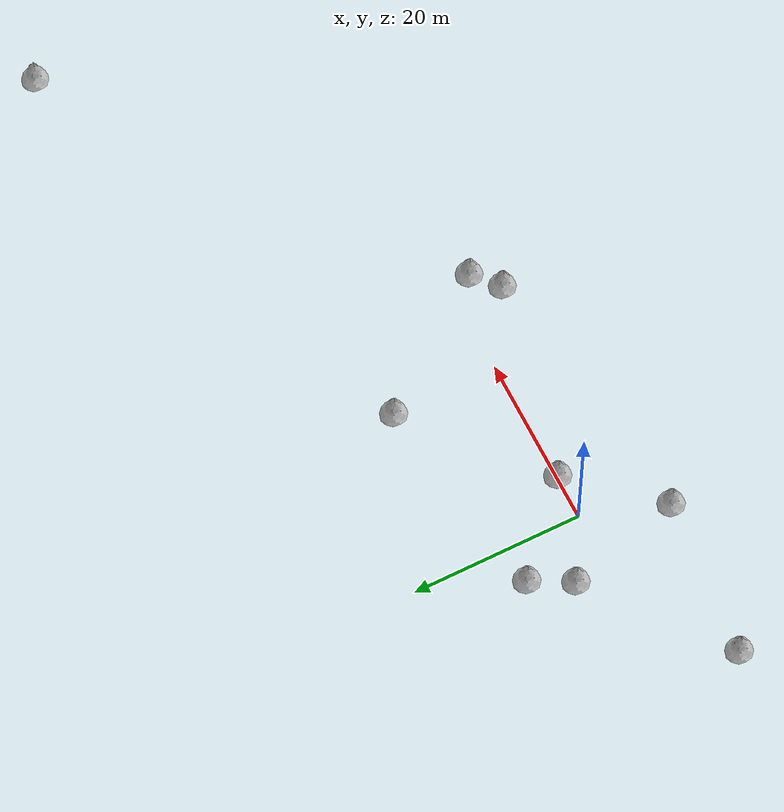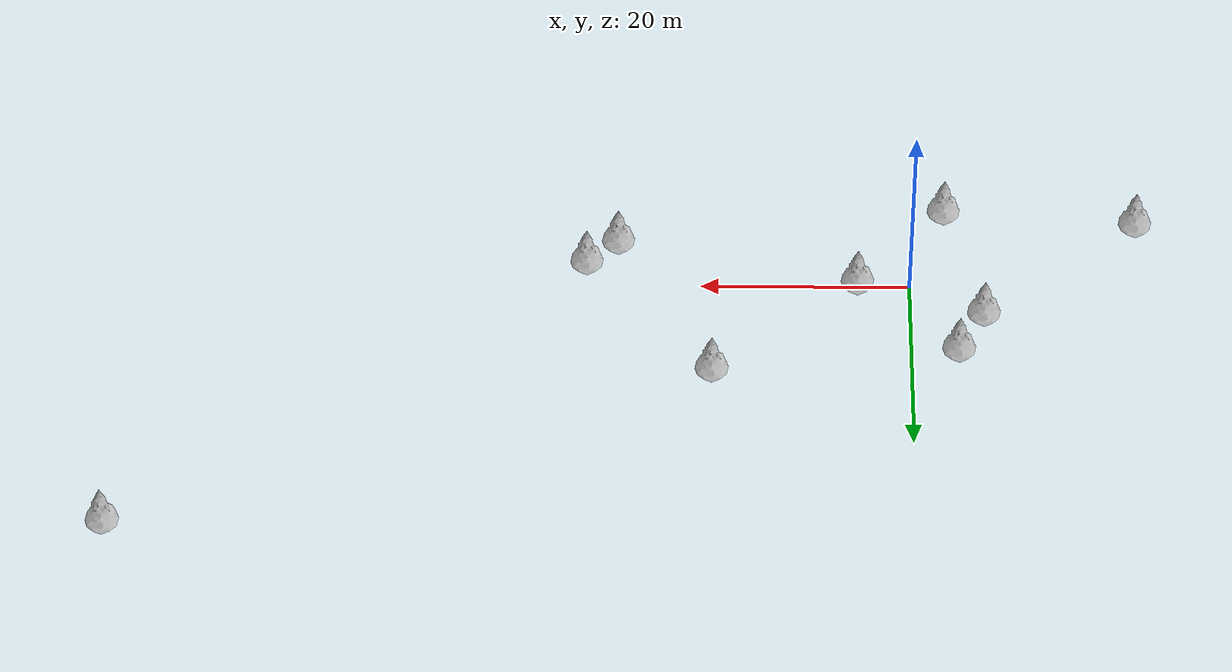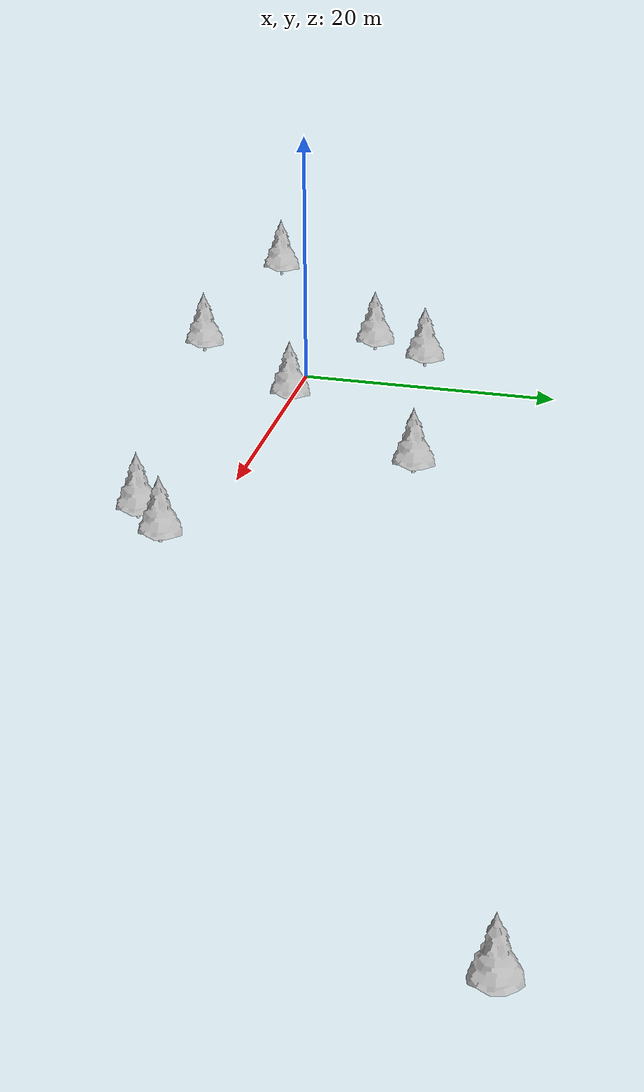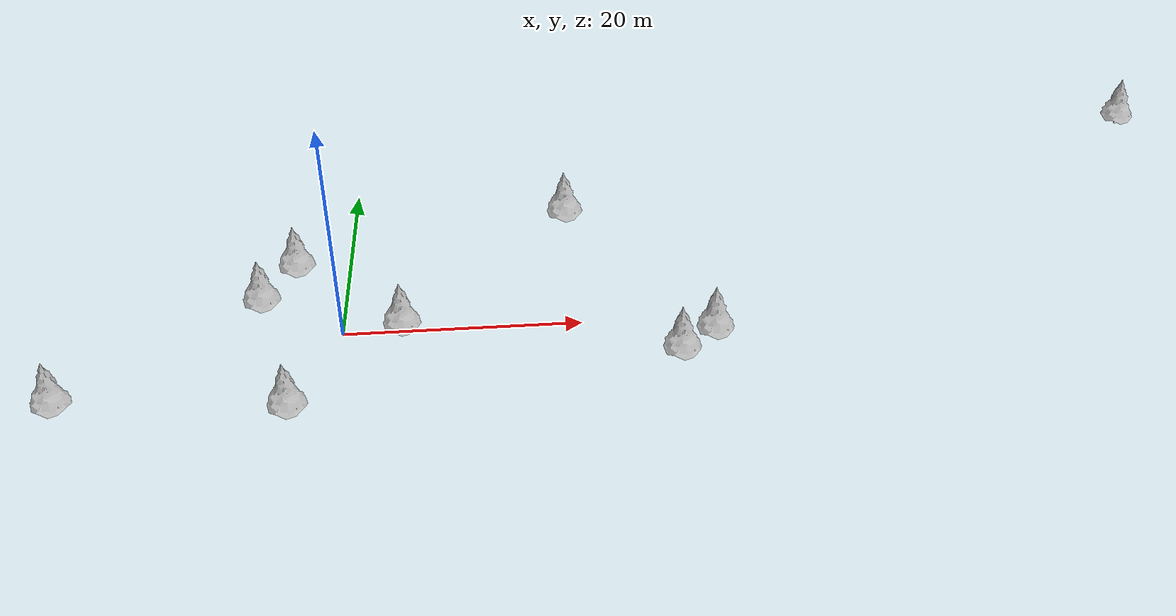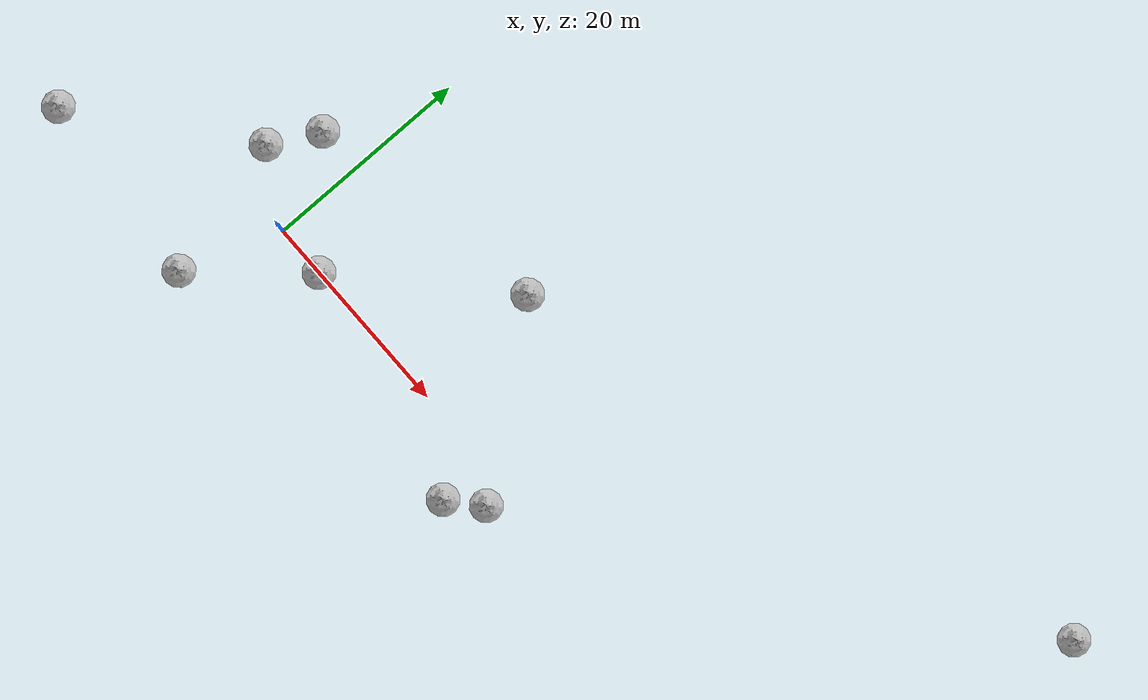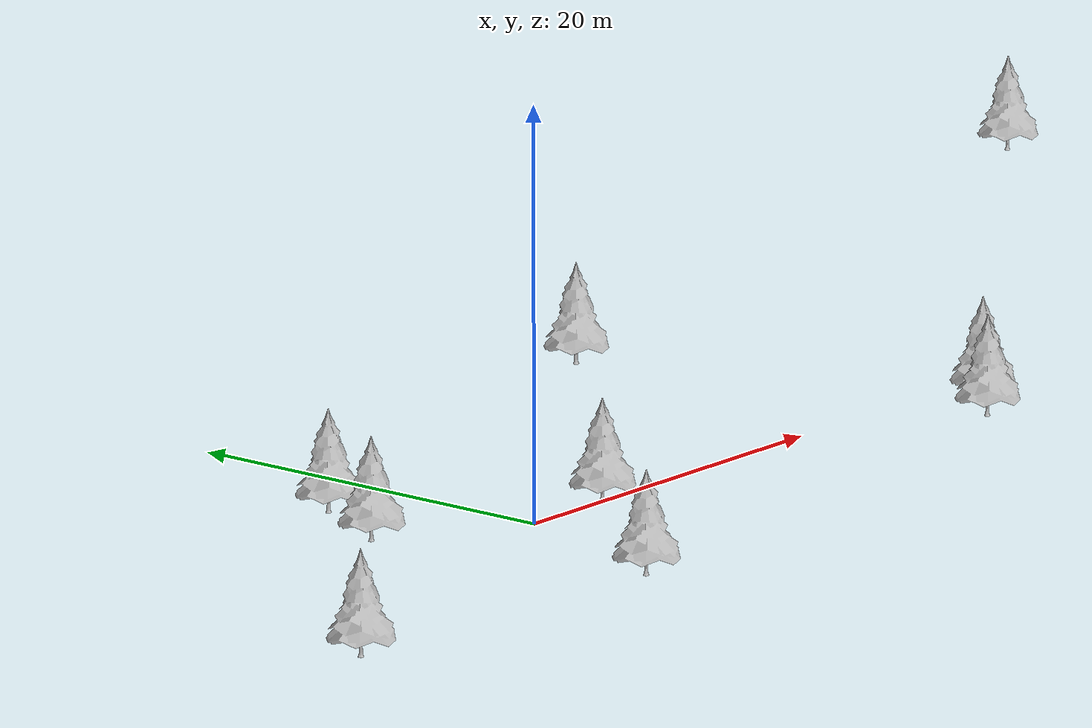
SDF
<sdf version="1.4">
 <world name="vrc_task_1">
  <scene><ambient>0.4 0.4 0.4 1</ambient><background>0.7 0.7 0.7 1</background><shadows>1</shadows></scene>
  <physics name="default_physics" default="0" type="ode">
   <gravity>0 0 -9.8066</gravity>
   <ode>
    <solver>
     <type>quick</type>
     <iters>10</iters>
     <sor>1.0</sor>
     <use_dynamic_moi_rescaling>0</use_dynamic_moi_rescaling>
    </solver>
    <constraints>
     <cfm>0</cfm>
     <erp>0.2</erp>
     <contact_max_correcting_vel>100</contact_max_correcting_vel>
     <contact_surface_layer>0.001</contact_surface_layer>
    </constraints>
   </ode>
   <max_step_size>0.004</max_step_size>
   <real_time_factor>1</real_time_factor>
   <real_time_update_rate>250</real_time_update_rate>
   <magnetic_field>6e-06 2.3e-05 -4.2e-05</magnetic_field>
  </physics>
  <light name="sun" type="directional">
   <pose>0 0 10 0 0 0</pose>
   <diffuse>0.8 0.8 0.8 1</diffuse>
   <specular>0.2 0.2 0.2 1</specular>
   <attenuation>
    <range>1000</range>
    <constant>0.9</constant>
    <linear>0.01</linear>
    <quadratic>0.001</quadratic>
   </attenuation>
   <direction>-0.5 0.1 -0.9</direction>
  </light>
  <include><name>pine_tree_1</name><uri>model://pine_tree</uri><pose>-4.5 8.7 0   0 0 0</pose></include>
  <include><name>pine_tree_2</name><uri>model://pine_tree</uri><pose>-3.5 -9.5 0   0 0 0</pose></include>
  <include><name>pine_tree_3</name><uri>model://pine_tree</uri><pose>-7 4 0   0 0 0</pose></include>
  <include><name>pine_tree_4</name><uri>model://pine_tree</uri><pose>28 -5 0.17   0 0 0</pose></include>
  <include><name>pine_tree_5</name><uri>model://pine_tree</uri><pose>19 13 1.58   0 0 0</pose></include>
  <include><name>pine_tree_6</name><uri>model://pine_tree</uri><pose>31 -2.4 0   0 0 0</pose></include>
  <include><name>pine_tree_7</name><uri>model://pine_tree</uri><pose>-22 -8 0   0 0 0</pose></include>
  <include><name>pine_tree_8</name><uri>model://pine_tree</uri><pose>75.3 30 -1.44  0 0 0</pose></include>
  <include><name>pine_tree_9</name><uri>model://pine_tree</uri><pose>5 -0 0  0 0 0</pose></include>
 </world>
</sdf>

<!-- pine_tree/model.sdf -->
<sdf version="1.6">
  <model name="pine_tree">
    <static>true</static>
    <link name="link">
      <collision name="collision">
        <geometry>
          <mesh>
            <uri>file://isr-testbed/pine_tree/meshes/pine_tree.dae</uri>
          </mesh>
        </geometry>
      </collision>
      <visual name="branch">
        <geometry>
          <mesh>
            <uri>file://isr-testbed/pine_tree/meshes/pine_tree.dae</uri>
            <submesh>
              <name>Branch</name>
            </submesh>
          </mesh>
        </geometry>
        <material>
          <script>
            <uri>file://isr-testbed/pine_tree/materials/scripts/</uri>
            <uri>file://isr-testbed/pine_tree/materials/textures/</uri>
            <name>PineTree/Branch</name>
          </script>
        </material>
      </visual>
      <visual name="bark">
        <geometry>
          <mesh>
            <uri>file://isr-testbed/pine_tree/meshes/pine_tree.dae</uri>
            <submesh>
              <name>Bark</name>
            </submesh>
          </mesh>
        </geometry>
        <material>
          <script>
            <uri>file://isr-testbed/pine_tree/materials/scripts/</uri>
            <uri>file://isr-testbed/pine_tree/materials/textures/</uri>
            <name>PineTree/Bark</name>
          </script>
        </material>
      </visual>
    </link>
  </model>
</sdf>
